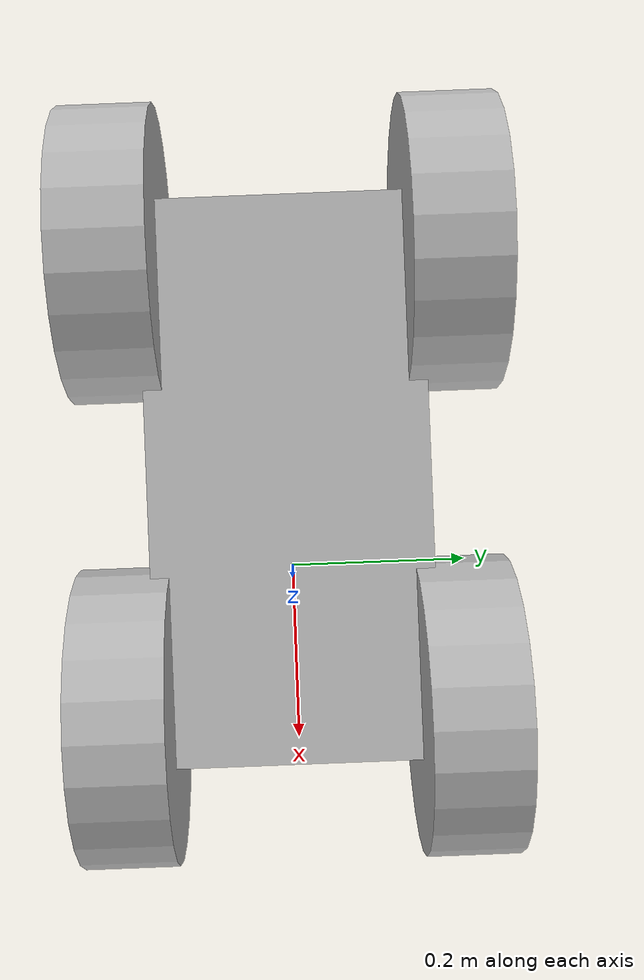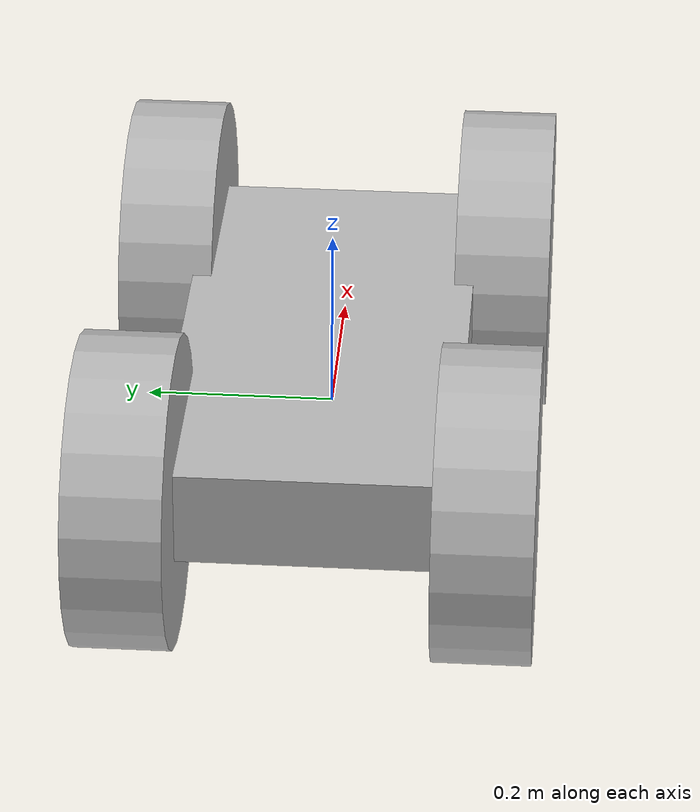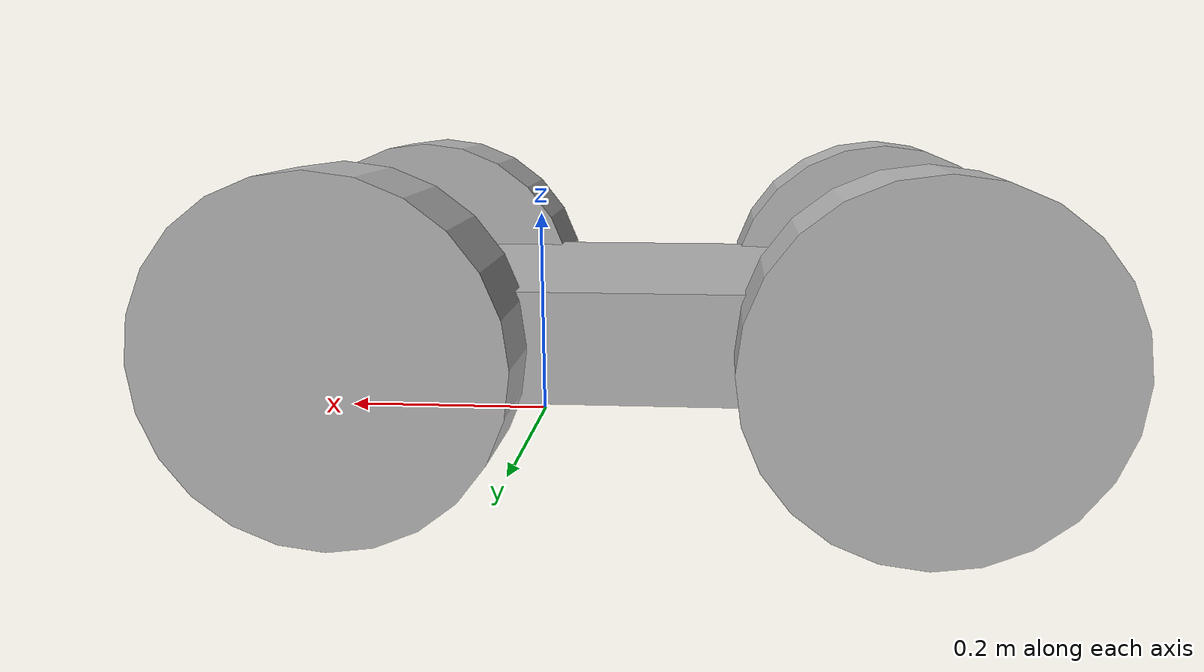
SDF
<sdf version="1.7">
    <model name='dd_robot'>
    <link name='chassis'>
        <pose>-.1 0 .1 0 0 0</pose>
        <static>true</static>
        <inertial>
		<mass>10</mass>
	</inertial>
        <collision name='collision'>
            <geometry>
                <box>
                    <size> 0.6 0.3 0.1 </size>
                </box>
            </geometry>
        </collision>
        <visual name='visual'>
            <geometry>
                <box>
                    <size> 0.6 0.3 0.1 </size>
                </box>
            </geometry>
        </visual>

        </link>

        <!-- Left Wheel -->
        <link name='left_front_wheel'>
            <pose>0.15 0.18 0.1 0 1.5707 1.5707</pose>
            <collision name='lw_collision'>
                <geometry>
                    <cylinder>
                        <radius>0.16</radius>
                        <length>0.1</length>
                    </cylinder>
                </geometry>
                <friction>
                    <ode>
                        <mu>1.0</mu>
                        <mu2>1.0</mu2>
                        <slip1>0.0</slip1>
                        <slip2>0.0</slip2>
                    </ode>
                </friction>
            </collision>
            <visual name='lw_visual'>
                <geometry>
                    <cylinder>
                        <radius>0.16</radius>
                        <length>0.1</length>
                    </cylinder>
                </geometry>
            </visual>
        </link>

        <!-- Right Wheel -->
        <link name='right_front_wheel'>
            <pose>0.15 -0.18 0.1 0 1.5707 1.5707</pose>
            <collision name='lw_collision'>
                <geometry>
                    <cylinder>
                        <radius>0.16</radius>
                        <length>0.1</length>
                    </cylinder>
                </geometry>
                <surface>
                <friction>
                    <ode>
                        <mu>1.0</mu>
                        <mu2>1.0</mu2>
                        <slip1>0.0</slip1>
                        <slip2>0.0</slip2>
                    </ode>
                </friction>
                </surface>
            </collision>
            <visual name='lw_visual'>
                <geometry>
                    <cylinder>
                        <radius>0.16</radius>
                        <length>0.1</length>
                    </cylinder>
                </geometry>
            </visual>
        </link>

         <!-- Left Wheel -->
        <link name='left_back_wheel'>
            <pose>-0.35 0.18 0.1 0 1.5707 1.5707</pose>
            <collision name='lw_collision'>
                <geometry>
                    <cylinder>
                        <radius>0.16</radius>
                        <length>0.1</length>
                    </cylinder>
                </geometry>
                <friction>
                    <ode>
                        <mu>1.0</mu>
                        <mu2>1.0</mu2>
                        <slip1>0.0</slip1>
                        <slip2>0.0</slip2>
                    </ode>
                </friction>
            </collision>
            <visual name='lw_visual'>
                <geometry>
                    <cylinder>
                        <radius>0.16</radius>
                        <length>0.1</length>
                    </cylinder>
                </geometry>
            </visual>
        </link>

        <!-- Right Wheel -->
        <link name='right_back_wheel'>
            <pose>-0.35 -0.18 0.1 0 1.5707 1.5707</pose>
            <collision name='lw_collision'>
                <geometry>
                    <cylinder>
                        <radius>0.16</radius>
                        <length>0.1</length>
                    </cylinder>
                </geometry>
                <surface>
                <friction>
                    <ode>
                        <mu>1.0</mu>
                        <mu2>1.0</mu2>
                        <slip1>0.0</slip1>
                        <slip2>0.0</slip2>
                    </ode>
                </friction>
                </surface>
            </collision>
            <visual name='lw_visual'>
                <geometry>
                    <cylinder>
                        <radius>0.16</radius>
                        <length>0.1</length>
                    </cylinder>
                </geometry>
            </visual>
        </link>

        <joint type='revolute' name='left_front_wheel_hinge'>
            <pose> 0 0 -0.03 0 0 0 </pose>
            <child>left_front_wheel</child>
            <parent>chassis</parent>
            <axis>
                <xyz>0 0 1</xyz>
            </axis>
            <dynamics>
		<friction>100.0</friction>
		<spring_stiffness>0.1</spring_stiffness>
	    </dynamics>
	    <limit>
		<effort>0.01</effort>
  		<velocity>0.005</velocity>
	    </limit>
        </joint>

         <joint type='revolute' name='right_front_wheel_hinge'>
            <pose> 0 0 0.03 0 0 0 </pose>
            <child>right_front_wheel</child>
            <parent>chassis</parent>
            <axis>
                <xyz>0 0 1</xyz>
            </axis>
            <dynamics>
		<friction>100.0</friction>
		<spring_stiffness>0.1</spring_stiffness>
	    </dynamics>
	    <limit>
		<effort>0.01</effort>
  		<velocity>0.005</velocity>
	    </limit>
        </joint>

        <joint type='revolute' name='left_back_wheel_hinge'>
            <pose> 0 0 -0.03 0 0 0 </pose>
            <child>left_back_wheel</child>
            <parent>chassis</parent>
            <axis>
                <xyz>0 0 1</xyz>
            </axis>
            <dynamics>
		<friction>100.0</friction>
		<spring_stiffness>0.1</spring_stiffness>
	    </dynamics>
	    <limit>
		<effort>0.01</effort>
  		<velocity>0.005</velocity>
	    </limit>
        </joint>

         <joint type='revolute' name='right_back_wheel_hinge'>
            <pose> 0 0 0.03 0 0 0 </pose>
            <child>right_back_wheel</child>
            <parent>chassis</parent>
            <axis>
                <xyz>0 0 1</xyz>
            </axis>
            <dynamics>
		<friction>100.0</friction>
		<spring_stiffness>0.1</spring_stiffness>
	    </dynamics>
	    <limit>
		<effort>0.01</effort>
  		<velocity>0.005</velocity>
	    </limit>
        </joint>

    </model>
</sdf>
